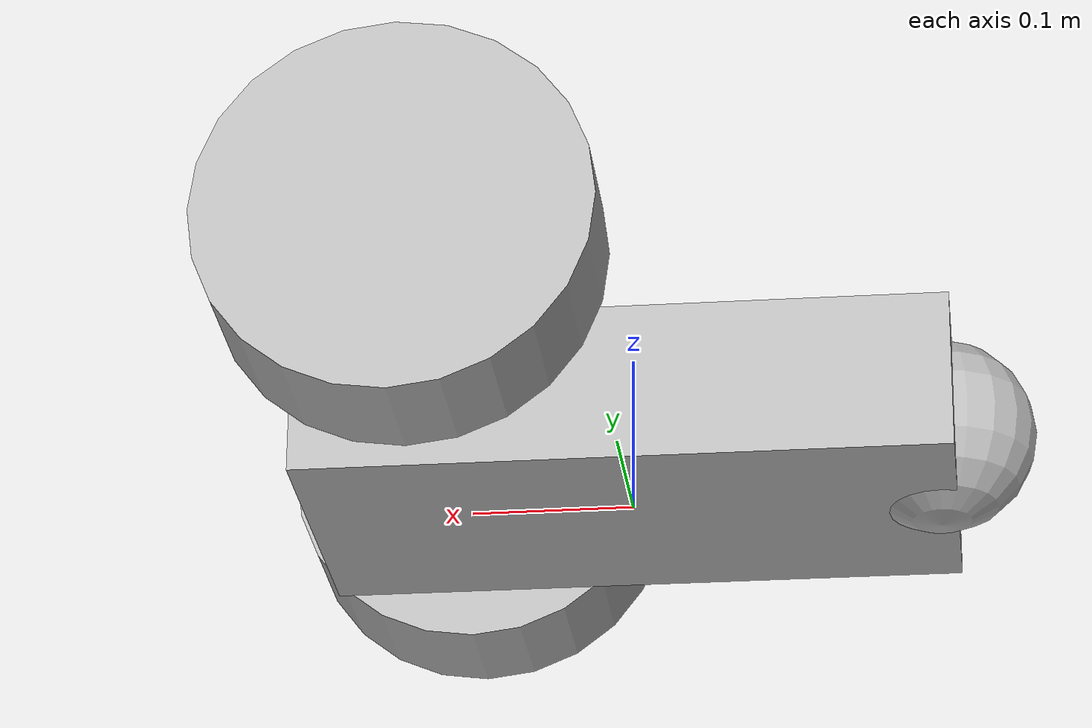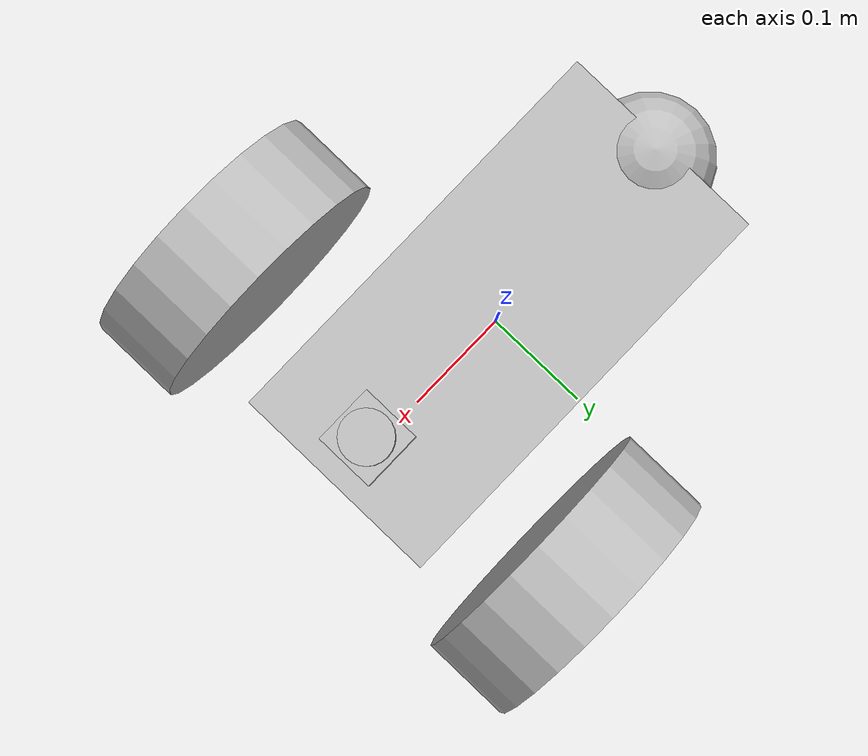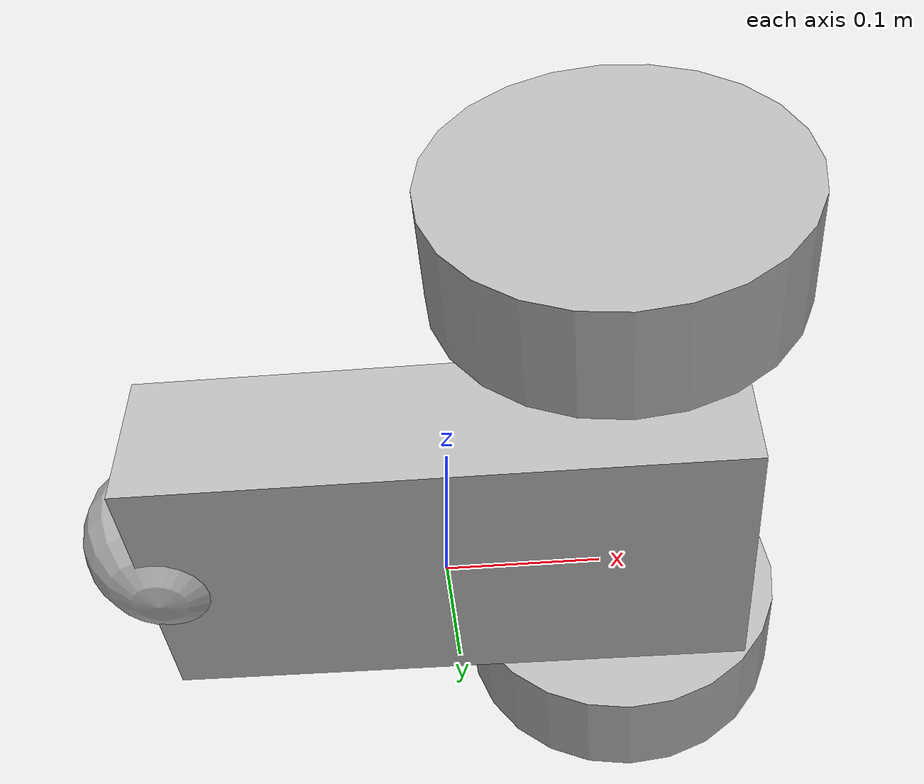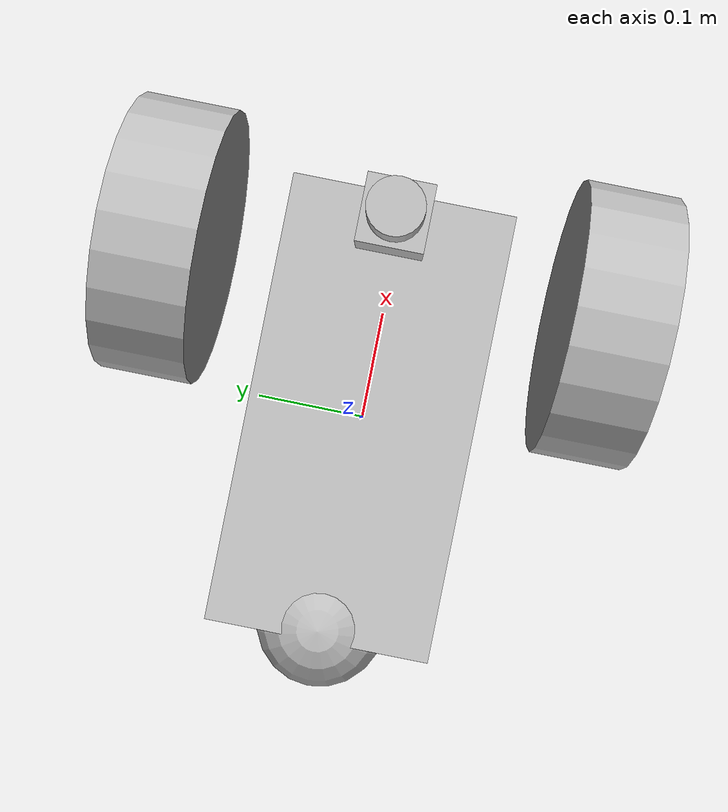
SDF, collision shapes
<?xml version='1.0'?>
<sdf version='1.4'>
  <model name="mobile_hagen_robot">
     <static>true</static>
       <link name='chassis'>
         <pose>0 0 .04 0 0 0</pose>
           <collision name='collision'>
             <geometry>
               <box>
                 <size>.4 .2 .1</size>
               </box>
             </geometry>
           </collision>

           <visual name='visual'>
             <pose> 0 0 0.02 0 0 0 </pose>
             <geometry>
               <mesh>
                 <uri>model://hagen_robot_model/meshes/robot.dae</uri>
                 <scale>0.9 0.5 0.5 </scale>
               </mesh>
             </geometry>
           </visual>

           <collision name='caster_collision'>
             <pose>-0.19 0 0 0 0 0</pose>
             <geometry>
               <sphere>
                 <radius>.06</radius>
               </sphere>
             </geometry>

             <surface>
               <friction>
                 <ode>
                   <mu>0</mu>
                   <mu2>0</mu2>
                   <slip1>1.0</slip1>
                   <slip2>1.0</slip2>
                 </ode>
               </friction>
             </surface>
           </collision>

           <visual name='caster_visual'>
             <pose>-0.19 0 0 0 0 0</pose>
             <geometry>
               <sphere>
                 <radius>.06</radius>
               </sphere>
             </geometry>
           </visual>
       </link>

       <link name="left_wheel">
         <pose>0.12 0.19 0.1 0 1.5707 1.5707</pose>
         <collision name="collision">
           <geometry>
             <cylinder>
               <radius>.12</radius>
               <length>.08</length>
             </cylinder>
           </geometry>
         </collision>
         <visual name="visual">
           <geometry>
             <cylinder>
               <radius>.12</radius>
               <length>.08</length>
             </cylinder>
           </geometry>
         </visual>
       </link>

       <link name="right_wheel">
         <pose>0.12 -0.19 0.1 0 1.5707 1.5707</pose>
         <collision name="collision">
           <geometry>
             <cylinder>
               <radius>.12</radius>
               <length>.08</length>
             </cylinder>
           </geometry>
         </collision>
         <visual name="visual">
           <geometry>
             <cylinder>
               <radius>.12</radius>
               <length>.08</length>
             </cylinder>
           </geometry>
         </visual>
       </link>

       <link name="laser_link">
         <inertial>
           <mass>0.1</mass>
         </inertial>
         <pose>0.15 0 0.30 0 0 0</pose>

         <visual name="visual">
           <geometry>
             <mesh>
               <uri>model://hokuyo/meshes/hokuyo.dae</uri>
             </mesh>
           </geometry>
         </visual>

         <collision name="collision-base">
           <pose>0 0 -0.0145 0 0 0</pose>
           <geometry>
             <box>
               <size>0.05 0.05 0.041</size>
             </box>
           </geometry>
         </collision>
         <collision name="collision-top">
           <pose>0 0 0.0205 0 0 0</pose>
           <geometry>
             <cylinder>
               <radius>0.021</radius>
               <length>0.029</length>
             </cylinder>
           </geometry>
         </collision>

	 <sensor name="laser" type="ray">
	   <pose>0.01 0 0.0175 0 -0 0</pose>
           <ray>
             <scan>
               <horizontal>
                 <samples>181</samples>
                 <resolution>1</resolution>
                 <min_angle>-1.57080</min_angle>
                 <max_angle>1.57080</max_angle>
               </horizontal>
             </scan>
             <range>
               <min>0.08</min>
               <max>10</max>
               <resolution>0.05</resolution>
             </range>
           </ray>
           <always_on>1</always_on>
           <update_rate>10</update_rate>
           <visualize>true</visualize>

           <plugin name='laser' filename='libgazebo_ros_ray_sensor.so'>
             <ros>
               <namespace>/hagen_robot</namespace>
               <argument>--ros-args --remap ~/out:=scan</argument>
             </ros>
             <output_type>sensor_msgs/LaserScan</output_type>
           </plugin>
	 </sensor>
       </link>
  </model>
</sdf>
